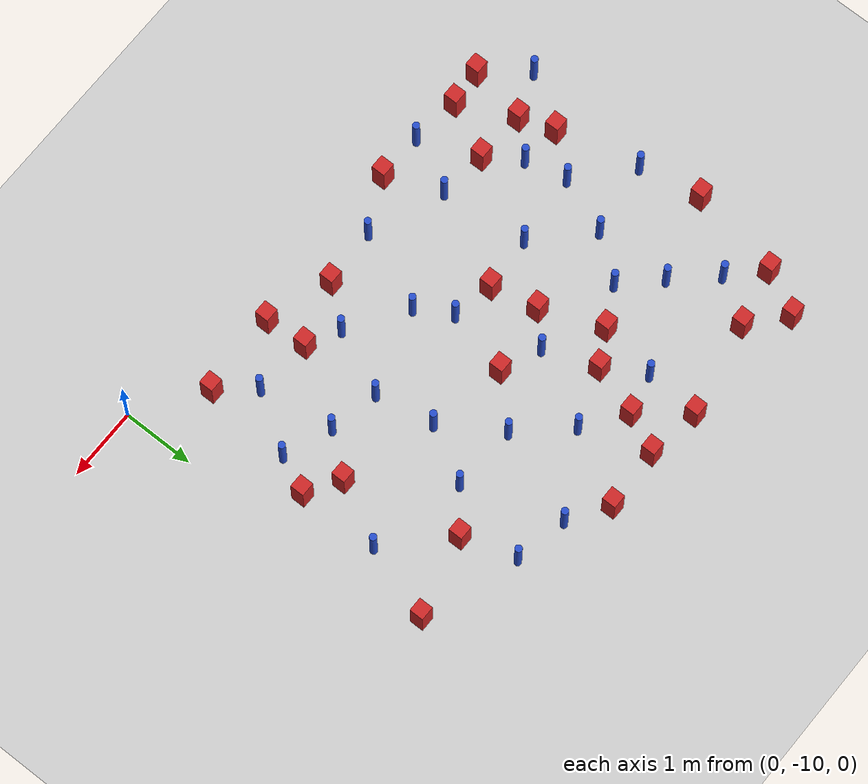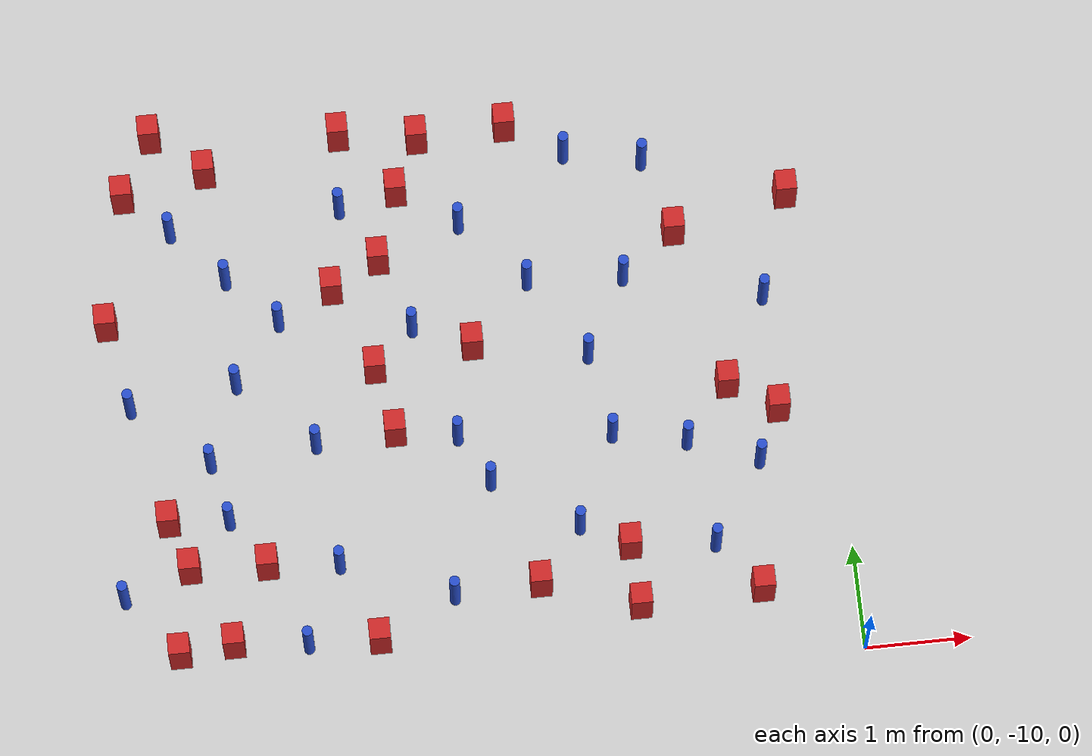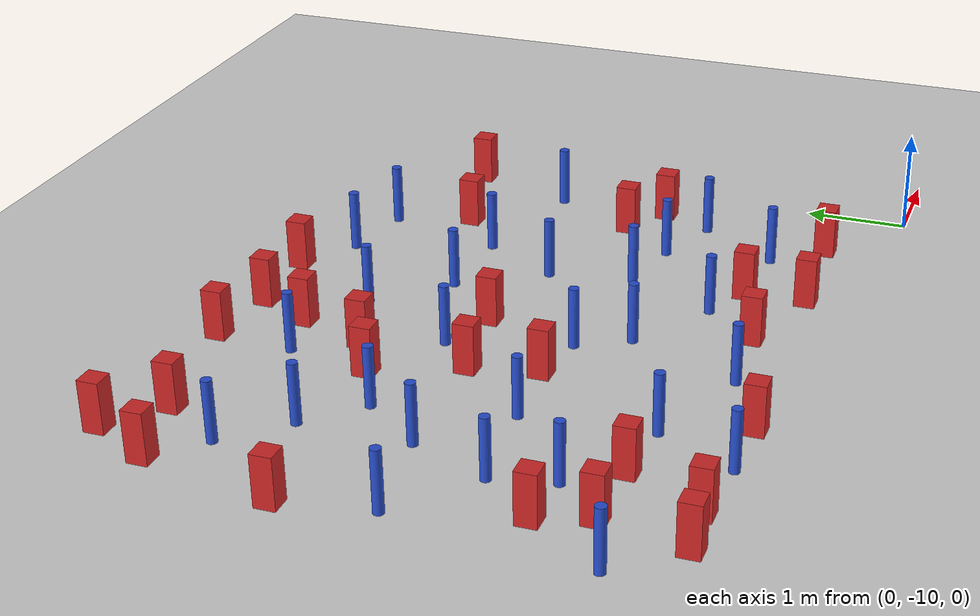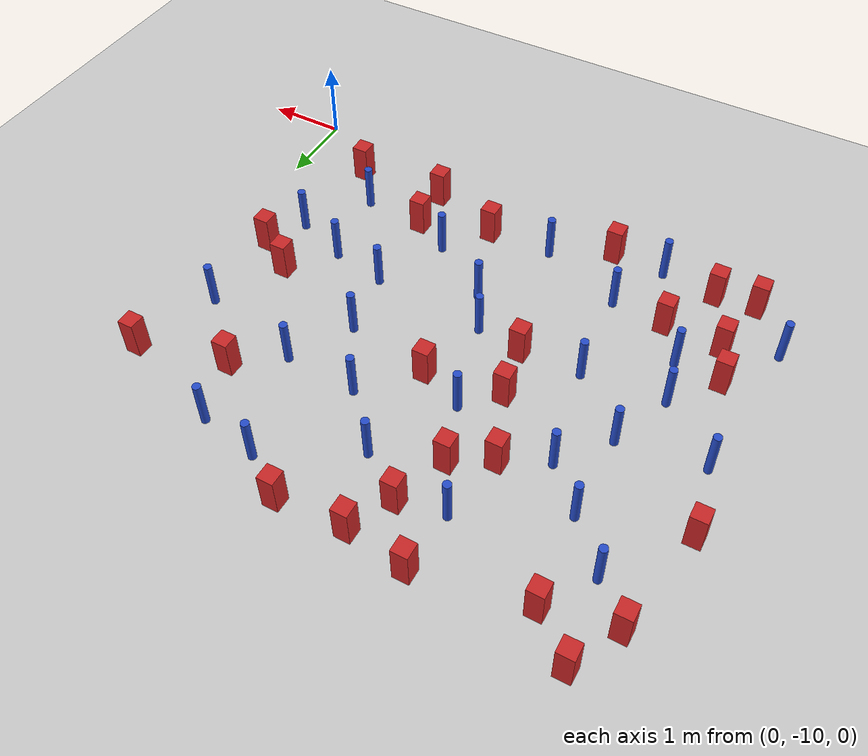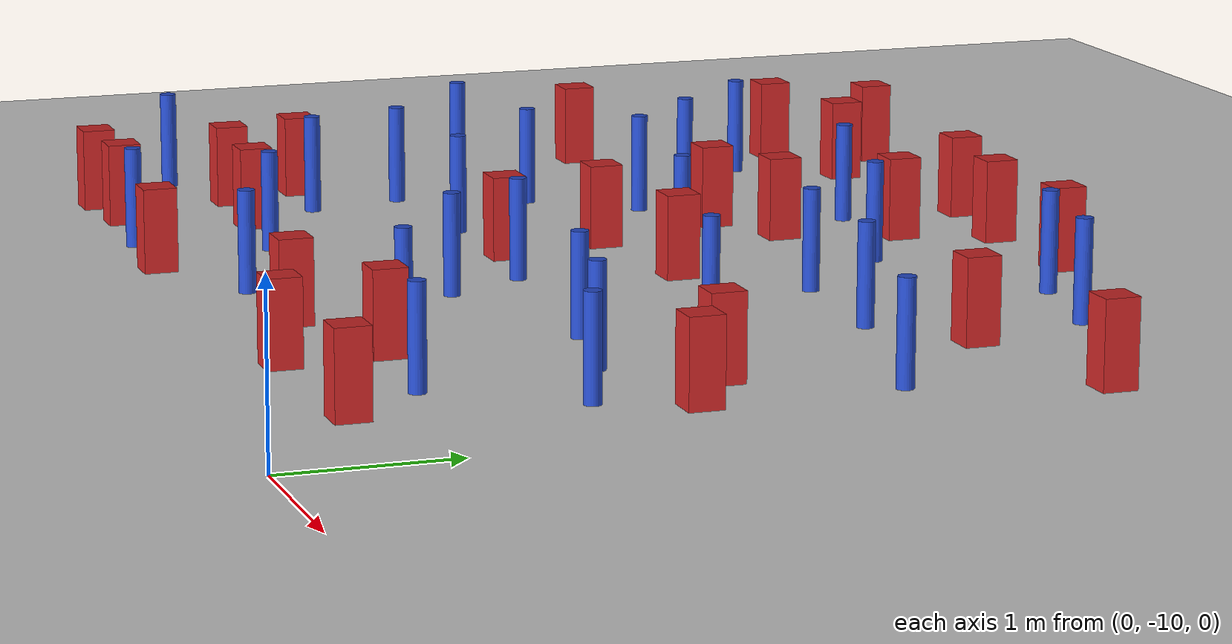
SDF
<sdf version="1.6">
 <world name="default">
  <model name="ground_plane">
   <static>1</static>
   <link name="link">
    <collision name="collision">
     <geometry><plane><normal>0 0 1</normal><size>100 100</size></plane></geometry>
     <surface><friction><ode><mu>100</mu><mu2>50</mu2></ode></friction></surface>
    </collision>
    <visual name="visual">
     <cast_shadows>0</cast_shadows>
     <geometry><plane><normal>0 0 1</normal><size>100 100</size></plane></geometry>
     <material>
      <ambient>1.0 1.0 1.0 1.0</ambient>
      <diffuse>0.8 0.8 0.8 1.0</diffuse>
      <specular>0.01 0.01 0.01 1.000000</specular>
     </material>
    </visual>
   </link>
  </model>
  <model name="pole_obstacle3">
   <static>true</static>
   <pose>-2.27383055472 -6.87822808617 7.38925637345e-09 -8.47170692798e-08 1.24976765033e-08 -1.74513093019e-07</pose>
   <link name="link">
    <pose>0 0 0.3 0 -0 0</pose>
    <inertial>
     <mass>1</mass>
     <inertia><ixx>0.145833</ixx><ixy>0</ixy><ixz>0</ixz><iyy>0.145833</iyy><iyz>0</iyz><izz>0.125</izz></inertia>
    </inertial>
    <collision name="collision">
     <geometry><cylinder><radius>0.05</radius><length>.6</length></cylinder></geometry>
    </collision>
    <visual name="visual">
     <geometry><cylinder><radius>0.05</radius><length>.6</length></cylinder></geometry>
     <material>
      <script><name>Gazebo/Blue</name><uri>file://media/materials/scripts/gazebo.material</uri></script>
     </material>
    </visual>
   </link>
  </model>
  <model name="square_post_obstacle8">
   <static>true</static>
   <pose>-5.75430322455 -4.65461936837 1.91545236811e-07 -7.35059704564e-06 1.12565212e-07 2.39332434364e-05</pose>
   <link name="link">
    <pose>0 0 0.25 0 -0 0</pose>
    <inertial>
     <mass>100</mass>
     <inertia>
      <ixx>0.166667</ixx>
      <ixy>0</ixy>
      <ixz>0</ixz>
      <iyy>0.166667</iyy>
      <iyz>0</iyz>
      <izz>0.166667</izz>
     </inertia>
    </inertial>
    <collision name="collision"><geometry><box><size>.2 .2 .5</size></box></geometry></collision>
    <visual name="visual">
     <geometry><box><size>.2 .2 .5</size></box></geometry>
     <material>
      <script><name>Gazebo/Red</name><uri>file://media/materials/scripts/gazebo.material</uri></script>
     </material>
    </visual>
   </link>
  </model>
  <model name="pole_obstacle7">
   <static>true</static>
   <pose>-0.77089150769 -8.09330029917 7.38925637345e-09 -8.47170692797e-08 1.249767648e-08 -1.74513093032e-07</pose>
   <link name="link">
    <pose>0 0 0.3 0 -0 0</pose>
    <inertial>
     <mass>1</mass>
     <inertia><ixx>0.145833</ixx><ixy>0</ixy><ixz>0</ixz><iyy>0.145833</iyy><iyz>0</iyz><izz>0.125</izz></inertia>
    </inertial>
    <collision name="collision">
     <geometry><cylinder><radius>0.05</radius><length>.6</length></cylinder></geometry>
    </collision>
    <visual name="visual">
     <geometry><cylinder><radius>0.05</radius><length>.6</length></cylinder></geometry>
     <material>
      <script><name>Gazebo/Blue</name><uri>file://media/materials/scripts/gazebo.material</uri></script>
     </material>
    </visual>
   </link>
  </model>
  <model name="square_post_obstacle14">
   <static>true</static>
   <pose>-4.17409091817 -5.71270492682 1.91545236811e-07 -7.35059704564e-06 1.12565212e-07 2.39332434364e-05</pose>
   <link name="link">
    <pose>0 0 0.25 0 -0 0</pose>
    <inertial>
     <mass>100</mass>
     <inertia>
      <ixx>0.166667</ixx>
      <ixy>0</ixy>
      <ixz>0</ixz>
      <iyy>0.166667</iyy>
      <iyz>0</iyz>
      <izz>0.166667</izz>
     </inertia>
    </inertial>
    <collision name="collision"><geometry><box><size>.2 .2 .5</size></box></geometry></collision>
    <visual name="visual">
     <geometry><box><size>.2 .2 .5</size></box></geometry>
     <material>
      <script><name>Gazebo/Red</name><uri>file://media/materials/scripts/gazebo.material</uri></script>
     </material>
    </visual>
   </link>
  </model>
  <model name="square_post_obstacle20">
   <static>true</static>
   <pose>-3.6914915848 -4.50716384659 1.91545236811e-07 -7.35059704564e-06 1.12565212e-07 2.39332434364e-05</pose>
   <link name="link">
    <pose>0 0 0.25 0 -0 0</pose>
    <inertial>
     <mass>100</mass>
     <inertia>
      <ixx>0.166667</ixx>
      <ixy>0</ixy>
      <ixz>0</ixz>
      <iyy>0.166667</iyy>
      <iyz>0</iyz>
      <izz>0.166667</izz>
     </inertia>
    </inertial>
    <collision name="collision"><geometry><box><size>.2 .2 .5</size></box></geometry></collision>
    <visual name="visual">
     <geometry><box><size>.2 .2 .5</size></box></geometry>
     <material>
      <script><name>Gazebo/Red</name><uri>file://media/materials/scripts/gazebo.material</uri></script>
     </material>
    </visual>
   </link>
  </model>
  <model name="square_post_obstacle26">
   <static>true</static>
   <pose>-0.22493551769 -5.42983822319 1.91545236811e-07 -7.35059704564e-06 1.12565212e-07 2.39332434364e-05</pose>
   <link name="link">
    <pose>0 0 0.25 0 -0 0</pose>
    <inertial>
     <mass>100</mass>
     <inertia>
      <ixx>0.166667</ixx>
      <ixy>0</ixy>
      <ixz>0</ixz>
      <iyy>0.166667</iyy>
      <iyz>0</iyz>
      <izz>0.166667</izz>
     </inertia>
    </inertial>
    <collision name="collision"><geometry><box><size>.2 .2 .5</size></box></geometry></collision>
    <visual name="visual">
     <geometry><box><size>.2 .2 .5</size></box></geometry>
     <material>
      <script><name>Gazebo/Red</name><uri>file://media/materials/scripts/gazebo.material</uri></script>
     </material>
    </visual>
   </link>
  </model>
  <model name="pole_obstacle18">
   <static>true</static>
   <pose>-6.84066763828 -8.8654462404 7.38925637345e-09 -8.471706928e-08 1.24976765081e-08 -1.74513093015e-07</pose>
   <link name="link">
    <pose>0 0 0.3 0 -0 0</pose>
    <inertial>
     <mass>1</mass>
     <inertia><ixx>0.145833</ixx><ixy>0</ixy><ixz>0</ixz><iyy>0.145833</iyy><iyz>0</iyz><izz>0.125</izz></inertia>
    </inertial>
    <collision name="collision">
     <geometry><cylinder><radius>0.05</radius><length>.6</length></cylinder></geometry>
    </collision>
    <visual name="visual">
     <geometry><cylinder><radius>0.05</radius><length>.6</length></cylinder></geometry>
     <material>
      <script><name>Gazebo/Blue</name><uri>file://media/materials/scripts/gazebo.material</uri></script>
     </material>
    </visual>
   </link>
  </model>
  <model name="pole_obstacle22">
   <static>true</static>
   <pose>-4.81011263715 -8.72837405567 7.38925637345e-09 -8.471706928e-08 1.24976765081e-08 -1.74513093015e-07</pose>
   <link name="link">
    <pose>0 0 0.3 0 -0 0</pose>
    <inertial>
     <mass>1</mass>
     <inertia><ixx>0.145833</ixx><ixy>0</ixy><ixz>0</ixz><iyy>0.145833</iyy><iyz>0</iyz><izz>0.125</izz></inertia>
    </inertial>
    <collision name="collision">
     <geometry><cylinder><radius>0.05</radius><length>.6</length></cylinder></geometry>
    </collision>
    <visual name="visual">
     <geometry><cylinder><radius>0.05</radius><length>.6</length></cylinder></geometry>
     <material>
      <script><name>Gazebo/Blue</name><uri>file://media/materials/scripts/gazebo.material</uri></script>
     </material>
    </visual>
   </link>
  </model>
  <model name="pole_obstacle27">
   <static>true</static>
   <pose>-2.52962763166 -8.57332152817 7.38925637345e-09 -8.47170692793e-08 1.24976764408e-08 -1.74513093041e-07</pose>
   <link name="link">
    <pose>0 0 0.3 0 -0 0</pose>
    <inertial>
     <mass>1</mass>
     <inertia><ixx>0.145833</ixx><ixy>0</ixy><ixz>0</ixz><iyy>0.145833</iyy><iyz>0</iyz><izz>0.125</izz></inertia>
    </inertial>
    <collision name="collision">
     <geometry><cylinder><radius>0.05</radius><length>.6</length></cylinder></geometry>
    </collision>
    <visual name="visual">
     <geometry><cylinder><radius>0.05</radius><length>.6</length></cylinder></geometry>
     <material>
      <script><name>Gazebo/Blue</name><uri>file://media/materials/scripts/gazebo.material</uri></script>
     </material>
    </visual>
   </link>
  </model>
  <model name="square_post_obstacle33">
   <static>true</static>
   <pose>-4.64373258278 -5.97226768983 1.91545236811e-07 -7.35059704564e-06 1.12565212e-07 2.39332434364e-05</pose>
   <link name="link">
    <pose>0 0 0.25 0 -0 0</pose>
    <inertial>
     <mass>100</mass>
     <inertia>
      <ixx>0.166667</ixx>
      <ixy>0</ixy>
      <ixz>0</ixz>
      <iyy>0.166667</iyy>
      <iyz>0</iyz>
      <izz>0.166667</izz>
     </inertia>
    </inertial>
    <collision name="collision"><geometry><box><size>.2 .2 .5</size></box></geometry></collision>
    <visual name="visual">
     <geometry><box><size>.2 .2 .5</size></box></geometry>
     <material>
      <script><name>Gazebo/Red</name><uri>file://media/materials/scripts/gazebo.material</uri></script>
     </material>
    </visual>
   </link>
  </model>
  <model name="pole_obstacle28">
   <static>true</static>
   <pose>-5.80458147735 -8.19432193247 7.38925637345e-09 -8.471706928e-08 1.24976765081e-08 -1.74513093015e-07</pose>
   <link name="link">
    <pose>0 0 0.3 0 -0 0</pose>
    <inertial>
     <mass>1</mass>
     <inertia><ixx>0.145833</ixx><ixy>0</ixy><ixz>0</ixz><iyy>0.145833</iyy><iyz>0</iyz><izz>0.125</izz></inertia>
    </inertial>
    <collision name="collision">
     <geometry><cylinder><radius>0.05</radius><length>.6</length></cylinder></geometry>
    </collision>
    <visual name="visual">
     <geometry><cylinder><radius>0.05</radius><length>.6</length></cylinder></geometry>
     <material>
      <script><name>Gazebo/Blue</name><uri>file://media/materials/scripts/gazebo.material</uri></script>
     </material>
    </visual>
   </link>
  </model>
  <model name="pole_obstacle31">
   <static>true</static>
   <pose>-1.4346927573 -7.8373261994 7.38925637345e-09 -8.47170692799e-08 1.24976765033e-08 -1.74513093018e-07</pose>
   <link name="link">
    <pose>0 0 0.3 0 -0 0</pose>
    <inertial>
     <mass>1</mass>
     <inertia><ixx>0.145833</ixx><ixy>0</ixy><ixz>0</ixz><iyy>0.145833</iyy><iyz>0</iyz><izz>0.125</izz></inertia>
    </inertial>
    <collision name="collision">
     <geometry><cylinder><radius>0.05</radius><length>.6</length></cylinder></geometry>
    </collision>
    <visual name="visual">
     <geometry><cylinder><radius>0.05</radius><length>.6</length></cylinder></geometry>
     <material>
      <script><name>Gazebo/Blue</name><uri>file://media/materials/scripts/gazebo.material</uri></script>
     </material>
    </visual>
   </link>
  </model>
  <model name="square_post_obstacle36">
   <static>true</static>
   <pose>-6.37585162031 -8.1430766115 1.91545236811e-07 -7.35059704564e-06 1.12565212e-07 2.39332434364e-05</pose>
   <link name="link">
    <pose>0 0 0.25 0 -0 0</pose>
    <inertial>
     <mass>100</mass>
     <inertia>
      <ixx>0.166667</ixx>
      <ixy>0</ixy>
      <ixz>0</ixz>
      <iyy>0.166667</iyy>
      <iyz>0</iyz>
      <izz>0.166667</izz>
     </inertia>
    </inertial>
    <collision name="collision"><geometry><box><size>.2 .2 .5</size></box></geometry></collision>
    <visual name="visual">
     <geometry><box><size>.2 .2 .5</size></box></geometry>
     <material>
      <script><name>Gazebo/Red</name><uri>file://media/materials/scripts/gazebo.material</uri></script>
     </material>
    </visual>
   </link>
  </model>
  <model name="square_post_obstacle39">
   <static>true</static>
   <pose>-2.84117472436 -4.46501018155 1.91545236811e-07 -7.35059704564e-06 1.12565212e-07 2.39332434364e-05</pose>
   <link name="link">
    <pose>0 0 0.25 0 -0 0</pose>
    <inertial>
     <mass>100</mass>
     <inertia>
      <ixx>0.166667</ixx>
      <ixy>0</ixy>
      <ixz>0</ixz>
      <iyy>0.166667</iyy>
      <iyz>0</iyz>
      <izz>0.166667</izz>
     </inertia>
    </inertial>
    <collision name="collision"><geometry><box><size>.2 .2 .5</size></box></geometry></collision>
    <visual name="visual">
     <geometry><box><size>.2 .2 .5</size></box></geometry>
     <material>
      <script><name>Gazebo/Red</name><uri>file://media/materials/scripts/gazebo.material</uri></script>
     </material>
    </visual>
   </link>
  </model>
  <model name="square_post_obstacle48">
   <static>true</static>
   <pose>-2.95599373303 -9.08975428804 1.91545236811e-07 -7.35059704564e-06 1.12565212e-07 2.39332434364e-05</pose>
   <link name="link">
    <pose>0 0 0.25 0 -0 0</pose>
    <inertial>
     <mass>100</mass>
     <inertia>
      <ixx>0.166667</ixx>
      <ixy>0</ixy>
      <ixz>0</ixz>
      <iyy>0.166667</iyy>
      <iyz>0</iyz>
      <izz>0.166667</izz>
     </inertia>
    </inertial>
    <collision name="collision"><geometry><box><size>.2 .2 .5</size></box></geometry></collision>
    <visual name="visual">
     <geometry><box><size>.2 .2 .5</size></box></geometry>
     <material>
      <script><name>Gazebo/Red</name><uri>file://media/materials/scripts/gazebo.material</uri></script>
     </material>
    </visual>
   </link>
  </model>
  <model name="pole_obstacle48">
   <static>true</static>
   <pose>-3.37375802952 -5.42960985773 7.38925637345e-09 -8.47170692798e-08 1.24976765033e-08 -1.74513093019e-07</pose>
   <link name="link">
    <pose>0 0 0.3 0 -0 0</pose>
    <inertial>
     <mass>1</mass>
     <inertia><ixx>0.145833</ixx><ixy>0</ixy><ixz>0</ixz><iyy>0.145833</iyy><iyz>0</iyz><izz>0.125</izz></inertia>
    </inertial>
    <collision name="collision">
     <geometry><cylinder><radius>0.05</radius><length>.6</length></cylinder></geometry>
    </collision>
    <visual name="visual">
     <geometry><cylinder><radius>0.05</radius><length>.6</length></cylinder></geometry>
     <material>
      <script><name>Gazebo/Blue</name><uri>file://media/materials/scripts/gazebo.material</uri></script>
     </material>
    </visual>
   </link>
  </model>
  <model name="square_post_obstacle49">
   <static>true</static>
   <pose>-4.44179697368 -4.39976877138 1.91545236811e-07 -7.35059704564e-06 1.12565212e-07 2.39332434364e-05</pose>
   <link name="link">
    <pose>0 0 0.25 0 -0 0</pose>
    <inertial>
     <mass>100</mass>
     <inertia>
      <ixx>0.166667</ixx>
      <ixy>0</ixy>
      <ixz>0</ixz>
      <iyy>0.166667</iyy>
      <iyz>0</iyz>
      <izz>0.166667</izz>
     </inertia>
    </inertial>
    <collision name="collision"><geometry><box><size>.2 .2 .5</size></box></geometry></collision>
    <visual name="visual">
     <geometry><box><size>.2 .2 .5</size></box></geometry>
     <material>
      <script><name>Gazebo/Red</name><uri>file://media/materials/scripts/gazebo.material</uri></script>
     </material>
    </visual>
   </link>
  </model>
  <model name="square_post_obstacle53">
   <static>true</static>
   <pose>-2.08302886187 -8.80590644414 1.91545236811e-07 -7.35059704564e-06 1.12565212e-07 2.39332434364e-05</pose>
   <link name="link">
    <pose>0 0 0.25 0 -0 0</pose>
    <inertial>
     <mass>100</mass>
     <inertia>
      <ixx>0.166667</ixx>
      <ixy>0</ixy>
      <ixz>0</ixz>
      <iyy>0.166667</iyy>
      <iyz>0</iyz>
      <izz>0.166667</izz>
     </inertia>
    </inertial>
    <collision name="collision"><geometry><box><size>.2 .2 .5</size></box></geometry></collision>
    <visual name="visual">
     <geometry><box><size>.2 .2 .5</size></box></geometry>
     <material>
      <script><name>Gazebo/Red</name><uri>file://media/materials/scripts/gazebo.material</uri></script>
     </material>
    </visual>
   </link>
  </model>
  <model name="square_post_obstacle54">
   <static>true</static>
   <pose>-5.86211831718 -9.39369747901 1.91545236811e-07 -7.35059704564e-06 1.12565212e-07 2.39332434364e-05</pose>
   <link name="link">
    <pose>0 0 0.25 0 -0 0</pose>
    <inertial>
     <mass>100</mass>
     <inertia>
      <ixx>0.166667</ixx>
      <ixy>0</ixy>
      <ixz>0</ixz>
      <iyy>0.166667</iyy>
      <iyz>0</iyz>
      <izz>0.166667</izz>
     </inertia>
    </inertial>
    <collision name="collision"><geometry><box><size>.2 .2 .5</size></box></geometry></collision>
    <visual name="visual">
     <geometry><box><size>.2 .2 .5</size></box></geometry>
     <material>
      <script><name>Gazebo/Red</name><uri>file://media/materials/scripts/gazebo.material</uri></script>
     </material>
    </visual>
   </link>
  </model>
  <model name="square_post_obstacle64">
   <static>true</static>
   <pose>-6.80957516549 -6.12275997141 1.91545236811e-07 -7.35059704564e-06 1.12565212e-07 2.39332434364e-05</pose>
   <link name="link">
    <pose>0 0 0.25 0 -0 0</pose>
    <inertial>
     <mass>100</mass>
     <inertia>
      <ixx>0.166667</ixx>
      <ixy>0</ixy>
      <ixz>0</ixz>
      <iyy>0.166667</iyy>
      <iyz>0</iyz>
      <izz>0.166667</izz>
     </inertia>
    </inertial>
    <collision name="collision"><geometry><box><size>.2 .2 .5</size></box></geometry></collision>
    <visual name="visual">
     <geometry><box><size>.2 .2 .5</size></box></geometry>
     <material>
      <script><name>Gazebo/Red</name><uri>file://media/materials/scripts/gazebo.material</uri></script>
     </material>
    </visual>
   </link>
  </model>
  <model name="square_post_obstacle70">
   <static>true</static>
   <pose>-0.545070507445 -7.59069855711 1.91545236811e-07 -7.35059704564e-06 1.12565212e-07 2.39332434364e-05</pose>
   <link name="link">
    <pose>0 0 0.25 0 -0 0</pose>
    <inertial>
     <mass>100</mass>
     <inertia>
      <ixx>0.166667</ixx>
      <ixy>0</ixy>
      <ixz>0</ixz>
      <iyy>0.166667</iyy>
      <iyz>0</iyz>
      <izz>0.166667</izz>
     </inertia>
    </inertial>
    <collision name="collision"><geometry><box><size>.2 .2 .5</size></box></geometry></collision>
    <visual name="visual">
     <geometry><box><size>.2 .2 .5</size></box></geometry>
     <material>
      <script><name>Gazebo/Red</name><uri>file://media/materials/scripts/gazebo.material</uri></script>
     </material>
    </visual>
   </link>
  </model>
  <model name="pole_obstacle68">
   <static>true</static>
   <pose>-4.49648310907 -5.15918075869 7.38925637345e-09 -8.47170692796e-08 1.24976764786e-08 -1.74513093032e-07</pose>
   <link name="link">
    <pose>0 0 0.3 0 -0 0</pose>
    <inertial>
     <mass>1</mass>
     <inertia><ixx>0.145833</ixx><ixy>0</ixy><ixz>0</ixz><iyy>0.145833</iyy><iyz>0</iyz><izz>0.125</izz></inertia>
    </inertial>
    <collision name="collision">
     <geometry><cylinder><radius>0.05</radius><length>.6</length></cylinder></geometry>
    </collision>
    <visual name="visual">
     <geometry><cylinder><radius>0.05</radius><length>.6</length></cylinder></geometry>
     <material>
      <script><name>Gazebo/Blue</name><uri>file://media/materials/scripts/gazebo.material</uri></script>
     </material>
    </visual>
   </link>
  </model>
  <model name="square_post_obstacle73">
   <static>true</static>
   <pose>-3.36348649995 -6.66922004553 1.91545236811e-07 -7.35059704564e-06 1.12565212e-07 2.39332434364e-05</pose>
   <link name="link">
    <pose>0 0 0.25 0 -0 0</pose>
    <inertial>
     <mass>100</mass>
     <inertia>
      <ixx>0.166667</ixx>
      <ixy>0</ixy>
      <ixz>0</ixz>
      <iyy>0.166667</iyy>
      <iyz>0</iyz>
      <izz>0.166667</izz>
     </inertia>
    </inertial>
    <collision name="collision"><geometry><box><size>.2 .2 .5</size></box></geometry></collision>
    <visual name="visual">
     <geometry><box><size>.2 .2 .5</size></box></geometry>
     <material>
      <script><name>Gazebo/Red</name><uri>file://media/materials/scripts/gazebo.material</uri></script>
     </material>
    </visual>
   </link>
  </model>
  <model name="pole_obstacle72">
   <static>true</static>
   <pose>-2.77766255109 -6.07495094368 7.38925637345e-09 -8.47170692798e-08 1.24976765033e-08 -1.74513093019e-07</pose>
   <link name="link">
    <pose>0 0 0.3 0 -0 0</pose>
    <inertial>
     <mass>1</mass>
     <inertia><ixx>0.145833</ixx><ixy>0</ixy><ixz>0</ixz><iyy>0.145833</iyy><iyz>0</iyz><izz>0.125</izz></inertia>
    </inertial>
    <collision name="collision">
     <geometry><cylinder><radius>0.05</radius><length>.6</length></cylinder></geometry>
    </collision>
    <visual name="visual">
     <geometry><cylinder><radius>0.05</radius><length>.6</length></cylinder></geometry>
     <material>
      <script><name>Gazebo/Blue</name><uri>file://media/materials/scripts/gazebo.material</uri></script>
     </material>
    </visual>
   </link>
  </model>
  <model name="pole_obstacle78">
   <static>true</static>
   <pose>-2.13101221334 -7.69496134936 7.38925637345e-09 -8.47170692798e-08 1.24976765033e-08 -1.74513093019e-07</pose>
   <link name="link">
    <pose>0 0 0.3 0 -0 0</pose>
    <inertial>
     <mass>1</mass>
     <inertia><ixx>0.145833</ixx><ixy>0</ixy><ixz>0</ixz><iyy>0.145833</iyy><iyz>0</iyz><izz>0.125</izz></inertia>
    </inertial>
    <collision name="collision">
     <geometry><cylinder><radius>0.05</radius><length>.6</length></cylinder></geometry>
    </collision>
    <visual name="visual">
     <geometry><cylinder><radius>0.05</radius><length>.6</length></cylinder></geometry>
     <material>
      <script><name>Gazebo/Blue</name><uri>file://media/materials/scripts/gazebo.material</uri></script>
     </material>
    </visual>
   </link>
  </model>
  <model name="pole_obstacle80">
   <static>true</static>
   <pose>-1.27833181355 -8.87329171969 7.38925637345e-09 -8.47170692798e-08 1.24976764881e-08 -1.74513093027e-07</pose>
   <link name="link">
    <pose>0 0 0.3 0 -0 0</pose>
    <inertial>
     <mass>1</mass>
     <inertia><ixx>0.145833</ixx><ixy>0</ixy><ixz>0</ixz><iyy>0.145833</iyy><iyz>0</iyz><izz>0.125</izz></inertia>
    </inertial>
    <collision name="collision">
     <geometry><cylinder><radius>0.05</radius><length>.6</length></cylinder></geometry>
    </collision>
    <visual name="visual">
     <geometry><cylinder><radius>0.05</radius><length>.6</length></cylinder></geometry>
     <material>
      <script><name>Gazebo/Blue</name><uri>file://media/materials/scripts/gazebo.material</uri></script>
     </material>
    </visual>
   </link>
  </model>
  <model name="pole_obstacle83">
   <static>true</static>
   <pose>-3.32034885317 -8.05339860376 7.38925637345e-09 -8.47170692793e-08 1.24976764408e-08 -1.74513093041e-07</pose>
   <link name="link">
    <pose>0 0 0.3 0 -0 0</pose>
    <inertial>
     <mass>1</mass>
     <inertia><ixx>0.145833</ixx><ixy>0</ixy><ixz>0</ixz><iyy>0.145833</iyy><iyz>0</iyz><izz>0.125</izz></inertia>
    </inertial>
    <collision name="collision">
     <geometry><cylinder><radius>0.05</radius><length>.6</length></cylinder></geometry>
    </collision>
    <visual name="visual">
     <geometry><cylinder><radius>0.05</radius><length>.6</length></cylinder></geometry>
     <material>
      <script><name>Gazebo/Blue</name><uri>file://media/materials/scripts/gazebo.material</uri></script>
     </material>
    </visual>
   </link>
  </model>
  <model name="pole_obstacle91">
   <static>true</static>
   <pose>-0.552663172152 -6.45410010633 7.38925637345e-09 -8.471706928e-08 1.24976765086e-08 -1.74513093015e-07</pose>
   <link name="link">
    <pose>0 0 0.3 0 -0 0</pose>
    <inertial>
     <mass>1</mass>
     <inertia><ixx>0.145833</ixx><ixy>0</ixy><ixz>0</ixz><iyy>0.145833</iyy><iyz>0</iyz><izz>0.125</izz></inertia>
    </inertial>
    <collision name="collision">
     <geometry><cylinder><radius>0.05</radius><length>.6</length></cylinder></geometry>
    </collision>
    <visual name="visual">
     <geometry><cylinder><radius>0.05</radius><length>.6</length></cylinder></geometry>
     <material>
      <script><name>Gazebo/Blue</name><uri>file://media/materials/scripts/gazebo.material</uri></script>
     </material>
    </visual>
   </link>
  </model>
  <model name="pole_obstacle92">
   <static>true</static>
   <pose>-3.58684702106 -7.57156794377 7.38925637345e-09 -8.47170692798e-08 1.24976765033e-08 -1.74513093019e-07</pose>
   <link name="link">
    <pose>0 0 0.3 0 -0 0</pose>
    <inertial>
     <mass>1</mass>
     <inertia><ixx>0.145833</ixx><ixy>0</ixy><ixz>0</ixz><iyy>0.145833</iyy><iyz>0</iyz><izz>0.125</izz></inertia>
    </inertial>
    <collision name="collision">
     <geometry><cylinder><radius>0.05</radius><length>.6</length></cylinder></geometry>
    </collision>
    <visual name="visual">
     <geometry><cylinder><radius>0.05</radius><length>.6</length></cylinder></geometry>
     <material>
      <script><name>Gazebo/Blue</name><uri>file://media/materials/scripts/gazebo.material</uri></script>
     </material>
    </visual>
   </link>
  </model>
  <model name="pole_obstacle94">
   <static>true</static>
   <pose>-6.13237820703 -5.2430871309 7.38925637345e-09 -8.47170692796e-08 1.24976764786e-08 -1.74513093032e-07</pose>
   <link name="link">
    <pose>0 0 0.3 0 -0 0</pose>
    <inertial>
     <mass>1</mass>
     <inertia><ixx>0.145833</ixx><ixy>0</ixy><ixz>0</ixz><iyy>0.145833</iyy><iyz>0</iyz><izz>0.125</izz></inertia>
    </inertial>
    <collision name="collision">
     <geometry><cylinder><radius>0.05</radius><length>.6</length></cylinder></geometry>
    </collision>
    <visual name="visual">
     <geometry><cylinder><radius>0.05</radius><length>.6</length></cylinder></geometry>
     <material>
      <script><name>Gazebo/Blue</name><uri>file://media/materials/scripts/gazebo.material</uri></script>
     </material>
    </visual>
   </link>
  </model>
  <model name="pole_obstacle102">
   <static>true</static>
   <pose>-5.17356636837 -6.25567338465 7.38925637345e-09 -8.47170692796e-08 1.24976764786e-08 -1.74513093032e-07</pose>
   <link name="link">
    <pose>0 0 0.3 0 -0 0</pose>
    <inertial>
     <mass>1</mass>
     <inertia><ixx>0.145833</ixx><ixy>0</ixy><ixz>0</ixz><iyy>0.145833</iyy><iyz>0</iyz><izz>0.125</izz></inertia>
    </inertial>
    <collision name="collision">
     <geometry><cylinder><radius>0.05</radius><length>.6</length></cylinder></geometry>
    </collision>
    <visual name="visual">
     <geometry><cylinder><radius>0.05</radius><length>.6</length></cylinder></geometry>
     <material>
      <script><name>Gazebo/Blue</name><uri>file://media/materials/scripts/gazebo.material</uri></script>
     </material>
    </visual>
   </link>
  </model>
  <model name="pole_obstacle104">
   <static>true</static>
   <pose>-5.6292964974 -6.84221675245 7.38925637345e-09 -8.47170692796e-08 1.24976764786e-08 -1.74513093032e-07</pose>
   <link name="link">
    <pose>0 0 0.3 0 -0 0</pose>
    <inertial>
     <mass>1</mass>
     <inertia><ixx>0.145833</ixx><ixy>0</ixy><ixz>0</ixz><iyy>0.145833</iyy><iyz>0</iyz><izz>0.125</izz></inertia>
    </inertial>
    <collision name="collision">
     <geometry><cylinder><radius>0.05</radius><length>.6</length></cylinder></geometry>
    </collision>
    <visual name="visual">
     <geometry><cylinder><radius>0.05</radius><length>.6</length></cylinder></geometry>
     <material>
      <script><name>Gazebo/Blue</name><uri>file://media/materials/scripts/gazebo.material</uri></script>
     </material>
    </visual>
   </link>
  </model>
  <model name="square_post_obstacle92">
   <static>true</static>
   <pose>-0.997213677307 -7.29943313742 1.91545236811e-07 -7.35059704564e-06 1.12565212e-07 2.39332434364e-05</pose>
   <link name="link">
    <pose>0 0 0.25 0 -0 0</pose>
    <inertial>
     <mass>100</mass>
     <inertia>
      <ixx>0.166667</ixx>
      <ixy>0</ixy>
      <ixz>0</ixz>
      <iyy>0.166667</iyy>
      <iyz>0</iyz>
      <izz>0.166667</izz>
     </inertia>
    </inertial>
    <collision name="collision"><geometry><box><size>.2 .2 .5</size></box></geometry></collision>
    <visual name="visual">
     <geometry><box><size>.2 .2 .5</size></box></geometry>
     <material>
      <script><name>Gazebo/Red</name><uri>file://media/materials/scripts/gazebo.material</uri></script>
     </material>
    </visual>
   </link>
  </model>
  <model name="square_post_obstacle95">
   <static>true</static>
   <pose>-4.30559655003 -6.81117980685 1.91545236811e-07 -7.35059704564e-06 1.12565212e-07 2.39332434364e-05</pose>
   <link name="link">
    <pose>0 0 0.25 0 -0 0</pose>
    <inertial>
     <mass>100</mass>
     <inertia>
      <ixx>0.166667</ixx>
      <ixy>0</ixy>
      <ixz>0</ixz>
      <iyy>0.166667</iyy>
      <iyz>0</iyz>
      <izz>0.166667</izz>
     </inertia>
    </inertial>
    <collision name="collision"><geometry><box><size>.2 .2 .5</size></box></geometry></collision>
    <visual name="visual">
     <geometry><box><size>.2 .2 .5</size></box></geometry>
     <material>
      <script><name>Gazebo/Red</name><uri>file://media/materials/scripts/gazebo.material</uri></script>
     </material>
    </visual>
   </link>
  </model>
  <model name="pole_obstacle112">
   <static>true</static>
   <pose>-2.29807329568 -4.80851787035 7.38925637345e-09 -8.47170692798e-08 1.24976765033e-08 -1.74513093019e-07</pose>
   <link name="link">
    <pose>0 0 0.3 0 -0 0</pose>
    <inertial>
     <mass>1</mass>
     <inertia><ixx>0.145833</ixx><ixy>0</ixy><ixz>0</ixz><iyy>0.145833</iyy><iyz>0</iyz><izz>0.125</izz></inertia>
    </inertial>
    <collision name="collision">
     <geometry><cylinder><radius>0.05</radius><length>.6</length></cylinder></geometry>
    </collision>
    <visual name="visual">
     <geometry><cylinder><radius>0.05</radius><length>.6</length></cylinder></geometry>
     <material>
      <script><name>Gazebo/Blue</name><uri>file://media/materials/scripts/gazebo.material</uri></script>
     </material>
    </visual>
   </link>
  </model>
  <model name="pole_obstacle131">
   <static>true</static>
   <pose>-6.64741399447 -6.98561947336 7.38925637345e-09 -8.47170692796e-08 1.24976764786e-08 -1.74513093032e-07</pose>
   <link name="link">
    <pose>0 0 0.3 0 -0 0</pose>
    <inertial>
     <mass>1</mass>
     <inertia><ixx>0.145833</ixx><ixy>0</ixy><ixz>0</ixz><iyy>0.145833</iyy><iyz>0</iyz><izz>0.125</izz></inertia>
    </inertial>
    <collision name="collision">
     <geometry><cylinder><radius>0.05</radius><length>.6</length></cylinder></geometry>
    </collision>
    <visual name="visual">
     <geometry><cylinder><radius>0.05</radius><length>.6</length></cylinder></geometry>
     <material>
      <script><name>Gazebo/Blue</name><uri>file://media/materials/scripts/gazebo.material</uri></script>
     </material>
    </visual>
   </link>
  </model>
  <model name="square_post_obstacle118">
   <static>true</static>
   <pose>-2.04843186681 -9.39759612874 1.91545236811e-07 -7.35059704564e-06 1.12565212e-07 2.39332434364e-05</pose>
   <link name="link">
    <pose>0 0 0.25 0 -0 0</pose>
    <inertial>
     <mass>100</mass>
     <inertia>
      <ixx>0.166667</ixx>
      <ixy>0</ixy>
      <ixz>0</ixz>
      <iyy>0.166667</iyy>
      <iyz>0</iyz>
      <izz>0.166667</izz>
     </inertia>
    </inertial>
    <collision name="collision"><geometry><box><size>.2 .2 .5</size></box></geometry></collision>
    <visual name="visual">
     <geometry><box><size>.2 .2 .5</size></box></geometry>
     <material>
      <script><name>Gazebo/Red</name><uri>file://media/materials/scripts/gazebo.material</uri></script>
     </material>
    </visual>
   </link>
  </model>
  <model name="pole_obstacle144">
   <static>true</static>
   <pose>-3.76591922132 -9.13786677527 7.38925637345e-09 -8.47170692793e-08 1.24976764408e-08 -1.74513093041e-07</pose>
   <link name="link">
    <pose>0 0 0.3 0 -0 0</pose>
    <inertial>
     <mass>1</mass>
     <inertia><ixx>0.145833</ixx><ixy>0</ixy><ixz>0</ixz><iyy>0.145833</iyy><iyz>0</iyz><izz>0.125</izz></inertia>
    </inertial>
    <collision name="collision">
     <geometry><cylinder><radius>0.05</radius><length>.6</length></cylinder></geometry>
    </collision>
    <visual name="visual">
     <geometry><cylinder><radius>0.05</radius><length>.6</length></cylinder></geometry>
     <material>
      <script><name>Gazebo/Blue</name><uri>file://media/materials/scripts/gazebo.material</uri></script>
     </material>
    </visual>
   </link>
  </model>
  <model name="square_post_obstacle142">
   <static>true</static>
   <pose>-3.94314727225 -5.03088432206 1.91545236811e-07 -7.35059704564e-06 1.12565212e-07 2.39332434364e-05</pose>
   <link name="link">
    <pose>0 0 0.25 0 -0 0</pose>
    <inertial>
     <mass>100</mass>
     <inertia>
      <ixx>0.166667</ixx>
      <ixy>0</ixy>
      <ixz>0</ixz>
      <iyy>0.166667</iyy>
      <iyz>0</iyz>
      <izz>0.166667</izz>
     </inertia>
    </inertial>
    <collision name="collision"><geometry><box><size>.2 .2 .5</size></box></geometry></collision>
    <visual name="visual">
     <geometry><box><size>.2 .2 .5</size></box></geometry>
     <material>
      <script><name>Gazebo/Red</name><uri>file://media/materials/scripts/gazebo.material</uri></script>
     </material>
    </visual>
   </link>
  </model>
  <model name="square_post_obstacle145">
   <static>true</static>
   <pose>-6.55651312319 -4.83333621205 1.91545236811e-07 -7.35059704564e-06 1.12565212e-07 2.39332434364e-05</pose>
   <link name="link">
    <pose>0 0 0.25 0 -0 0</pose>
    <inertial>
     <mass>100</mass>
     <inertia>
      <ixx>0.166667</ixx>
      <ixy>0</ixy>
      <ixz>0</ixz>
      <iyy>0.166667</iyy>
      <iyz>0</iyz>
      <izz>0.166667</izz>
     </inertia>
    </inertial>
    <collision name="collision"><geometry><box><size>.2 .2 .5</size></box></geometry></collision>
    <visual name="visual">
     <geometry><box><size>.2 .2 .5</size></box></geometry>
     <material>
      <script><name>Gazebo/Red</name><uri>file://media/materials/scripts/gazebo.material</uri></script>
     </material>
    </visual>
   </link>
  </model>
  <model name="square_post_obstacle147">
   <static>true</static>
   <pose>-4.50306029561 -9.48910170328 1.91545236811e-07 -7.35059704564e-06 1.12565212e-07 2.39332434364e-05</pose>
   <link name="link">
    <pose>0 0 0.25 0 -0 0</pose>
    <inertial>
     <mass>100</mass>
     <inertia>
      <ixx>0.166667</ixx>
      <ixy>0</ixy>
      <ixz>0</ixz>
      <iyy>0.166667</iyy>
      <iyz>0</iyz>
      <izz>0.166667</izz>
     </inertia>
    </inertial>
    <collision name="collision"><geometry><box><size>.2 .2 .5</size></box></geometry></collision>
    <visual name="visual">
     <geometry><box><size>.2 .2 .5</size></box></geometry>
     <material>
      <script><name>Gazebo/Red</name><uri>file://media/materials/scripts/gazebo.material</uri></script>
     </material>
    </visual>
   </link>
  </model>
  <model name="pole_obstacle157">
   <static>true</static>
   <pose>-4.92705903204 -7.51635269735 7.38925637345e-09 -8.47170692796e-08 1.24976764786e-08 -1.74513093032e-07</pose>
   <link name="link">
    <pose>0 0 0.3 0 -0 0</pose>
    <inertial>
     <mass>1</mass>
     <inertia><ixx>0.145833</ixx><ixy>0</ixy><ixz>0</ixz><iyy>0.145833</iyy><iyz>0</iyz><izz>0.125</izz></inertia>
    </inertial>
    <collision name="collision">
     <geometry><cylinder><radius>0.05</radius><length>.6</length></cylinder></geometry>
    </collision>
    <visual name="visual">
     <geometry><cylinder><radius>0.05</radius><length>.6</length></cylinder></geometry>
     <material>
      <script><name>Gazebo/Blue</name><uri>file://media/materials/scripts/gazebo.material</uri></script>
     </material>
    </visual>
   </link>
  </model>
  <model name="pole_obstacle167">
   <static>true</static>
   <pose>-5.93286715985 -7.60900471609 7.38925637345e-09 -8.47170692796e-08 1.24976764786e-08 -1.74513093032e-07</pose>
   <link name="link">
    <pose>0 0 0.3 0 -0 0</pose>
    <inertial>
     <mass>1</mass>
     <inertia><ixx>0.145833</ixx><ixy>0</ixy><ixz>0</ixz><iyy>0.145833</iyy><iyz>0</iyz><izz>0.125</izz></inertia>
    </inertial>
    <collision name="collision">
     <geometry><cylinder><radius>0.05</radius><length>.6</length></cylinder></geometry>
    </collision>
    <visual name="visual">
     <geometry><cylinder><radius>0.05</radius><length>.6</length></cylinder></geometry>
     <material>
      <script><name>Gazebo/Blue</name><uri>file://media/materials/scripts/gazebo.material</uri></script>
     </material>
    </visual>
   </link>
  </model>
  <model name="pole_obstacle177">
   <static>true</static>
   <pose>-1.86084251273 -6.12475149789 7.38925637345e-09 -8.47170692799e-08 1.24976765033e-08 -1.74513093018e-07</pose>
   <link name="link">
    <pose>0 0 0.3 0 -0 0</pose>
    <inertial>
     <mass>1</mass>
     <inertia><ixx>0.145833</ixx><ixy>0</ixy><ixz>0</ixz><iyy>0.145833</iyy><iyz>0</iyz><izz>0.125</izz></inertia>
    </inertial>
    <collision name="collision">
     <geometry><cylinder><radius>0.05</radius><length>.6</length></cylinder></geometry>
    </collision>
    <visual name="visual">
     <geometry><cylinder><radius>0.05</radius><length>.6</length></cylinder></geometry>
     <material>
      <script><name>Gazebo/Blue</name><uri>file://media/materials/scripts/gazebo.material</uri></script>
     </material>
    </visual>
   </link>
  </model>
  <model name="pole_obstacle179">
   <static>true</static>
   <pose>-1.55757621233 -4.9567652923 7.38925637345e-09 -8.47170692799e-08 1.24976765033e-08 -1.74513093018e-07</pose>
   <link name="link">
    <pose>0 0 0.3 0 -0 0</pose>
    <inertial>
     <mass>1</mass>
     <inertia><ixx>0.145833</ixx><ixy>0</ixy><ixz>0</ixz><iyy>0.145833</iyy><iyz>0</iyz><izz>0.125</izz></inertia>
    </inertial>
    <collision name="collision">
     <geometry><cylinder><radius>0.05</radius><length>.6</length></cylinder></geometry>
    </collision>
    <visual name="visual">
     <geometry><cylinder><radius>0.05</radius><length>.6</length></cylinder></geometry>
     <material>
      <script><name>Gazebo/Blue</name><uri>file://media/materials/scripts/gazebo.material</uri></script>
     </material>
    </visual>
   </link>
  </model>
  <model name="pole_obstacle186">
   <static>true</static>
   <pose>-5.16819380075 -9.47629693542 7.38925637345e-09 -8.471706928e-08 1.24976765081e-08 -1.74513093015e-07</pose>
   <link name="link">
    <pose>0 0 0.3 0 -0 0</pose>
    <inertial>
     <mass>1</mass>
     <inertia><ixx>0.145833</ixx><ixy>0</ixy><ixz>0</ixz><iyy>0.145833</iyy><iyz>0</iyz><izz>0.125</izz></inertia>
    </inertial>
    <collision name="collision">
     <geometry><cylinder><radius>0.05</radius><length>.6</length></cylinder></geometry>
    </collision>
    <visual name="visual">
     <geometry><cylinder><radius>0.05</radius><length>.6</length></cylinder></geometry>
     <material>
      <script><name>Gazebo/Blue</name><uri>file://media/materials/scripts/gazebo.material</uri></script>
     </material>
    </visual>
   </link>
  </model>
  <model name="square_post_obstacle177">
   <static>true</static>
   <pose>-4.17262872099 -7.4639207741 1.91545236811e-07 -7.35059704564e-06 1.12565212e-07 2.39332434364e-05</pose>
   <link name="link">
    <pose>0 0 0.25 0 -0 0</pose>
    <inertial>
     <mass>100</mass>
     <inertia>
      <ixx>0.166667</ixx>
      <ixy>0</ixy>
      <ixz>0</ixz>
      <iyy>0.166667</iyy>
      <iyz>0</iyz>
      <izz>0.166667</izz>
     </inertia>
    </inertial>
    <collision name="collision"><geometry><box><size>.2 .2 .5</size></box></geometry></collision>
    <visual name="visual">
     <geometry><box><size>.2 .2 .5</size></box></geometry>
     <material>
      <script><name>Gazebo/Red</name><uri>file://media/materials/scripts/gazebo.material</uri></script>
     </material>
    </visual>
   </link>
  </model>
  <model name="square_post_obstacle179">
   <static>true</static>
   <pose>-1.33384936534 -5.70122175432 1.91545236811e-07 -7.35059704564e-06 1.12565212e-07 2.39332434364e-05</pose>
   <link name="link">
    <pose>0 0 0.25 0 -0 0</pose>
    <inertial>
     <mass>100</mass>
     <inertia>
      <ixx>0.166667</ixx>
      <ixy>0</ixy>
      <ixz>0</ixz>
      <iyy>0.166667</iyy>
      <iyz>0</iyz>
      <izz>0.166667</izz>
     </inertia>
    </inertial>
    <collision name="collision"><geometry><box><size>.2 .2 .5</size></box></geometry></collision>
    <visual name="visual">
     <geometry><box><size>.2 .2 .5</size></box></geometry>
     <material>
      <script><name>Gazebo/Red</name><uri>file://media/materials/scripts/gazebo.material</uri></script>
     </material>
    </visual>
   </link>
  </model>
  <model name="square_post_obstacle189">
   <static>true</static>
   <pose>-5.48656246119 -8.65988398399 1.91545236811e-07 -7.35059704564e-06 1.12565212e-07 2.39332434364e-05</pose>
   <link name="link">
    <pose>0 0 0.25 0 -0 0</pose>
    <inertial>
     <mass>100</mass>
     <inertia>
      <ixx>0.166667</ixx>
      <ixy>0</ixy>
      <ixz>0</ixz>
      <iyy>0.166667</iyy>
      <iyz>0</iyz>
      <izz>0.166667</izz>
     </inertia>
    </inertial>
    <collision name="collision"><geometry><box><size>.2 .2 .5</size></box></geometry></collision>
    <visual name="visual">
     <geometry><box><size>.2 .2 .5</size></box></geometry>
     <material>
      <script><name>Gazebo/Red</name><uri>file://media/materials/scripts/gazebo.material</uri></script>
     </material>
    </visual>
   </link>
  </model>
  <model name="square_post_obstacle195">
   <static>true</static>
   <pose>-6.3691428949 -9.44198961806 1.91545236811e-07 -7.35059704564e-06 1.12565212e-07 2.39332434364e-05</pose>
   <link name="link">
    <pose>0 0 0.25 0 -0 0</pose>
    <inertial>
     <mass>100</mass>
     <inertia>
      <ixx>0.166667</ixx>
      <ixy>0</ixy>
      <ixz>0</ixz>
      <iyy>0.166667</iyy>
      <iyz>0</iyz>
      <izz>0.166667</izz>
     </inertia>
    </inertial>
    <collision name="collision"><geometry><box><size>.2 .2 .5</size></box></geometry></collision>
    <visual name="visual">
     <geometry><box><size>.2 .2 .5</size></box></geometry>
     <material>
      <script><name>Gazebo/Red</name><uri>file://media/materials/scripts/gazebo.material</uri></script>
     </material>
    </visual>
   </link>
  </model>
  <model name="square_post_obstacle200">
   <static>true</static>
   <pose>-6.2492212005 -4.23791867354 1.91545236811e-07 -7.35059704564e-06 1.12565212e-07 2.39332434364e-05</pose>
   <link name="link">
    <pose>0 0 0.25 0 -0 0</pose>
    <inertial>
     <mass>100</mass>
     <inertia>
      <ixx>0.166667</ixx>
      <ixy>0</ixy>
      <ixz>0</ixz>
      <iyy>0.166667</iyy>
      <iyz>0</iyz>
      <izz>0.166667</izz>
     </inertia>
    </inertial>
    <collision name="collision"><geometry><box><size>.2 .2 .5</size></box></geometry></collision>
    <visual name="visual">
     <geometry><box><size>.2 .2 .5</size></box></geometry>
     <material>
      <script><name>Gazebo/Red</name><uri>file://media/materials/scripts/gazebo.material</uri></script>
     </material>
    </visual>
   </link>
  </model>
  <model name="square_post_obstacle202">
   <static>true</static>
   <pose>-6.21276323299 -8.62763568937 1.91545236811e-07 -7.35059704564e-06 1.12565212e-07 2.39332434364e-05</pose>
   <link name="link">
    <pose>0 0 0.25 0 -0 0</pose>
    <inertial>
     <mass>100</mass>
     <inertia>
      <ixx>0.166667</ixx>
      <ixy>0</ixy>
      <ixz>0</ixz>
      <iyy>0.166667</iyy>
      <iyz>0</iyz>
      <izz>0.166667</izz>
     </inertia>
    </inertial>
    <collision name="collision"><geometry><box><size>.2 .2 .5</size></box></geometry></collision>
    <visual name="visual">
     <geometry><box><size>.2 .2 .5</size></box></geometry>
     <material>
      <script><name>Gazebo/Red</name><uri>file://media/materials/scripts/gazebo.material</uri></script>
     </material>
    </visual>
   </link>
  </model>
  <model name="pole_obstacle189">
   <static>true</static>
   <pose>-3.91374246646 -6.43941541213 7.38925637345e-09 -8.47170692794e-08 1.24976764468e-08 -1.7451309304e-07</pose>
   <link name="link">
    <pose>0 0 0.3 0 -0 0</pose>
    <inertial>
     <mass>1</mass>
     <inertia><ixx>0.145833</ixx><ixy>0</ixy><ixz>0</ixz><iyy>0.145833</iyy><iyz>0</iyz><izz>0.125</izz></inertia>
    </inertial>
    <collision name="collision">
     <geometry><cylinder><radius>0.05</radius><length>.6</length></cylinder></geometry>
    </collision>
    <visual name="visual">
     <geometry><cylinder><radius>0.05</radius><length>.6</length></cylinder></geometry>
     <material>
      <script><name>Gazebo/Blue</name><uri>file://media/materials/scripts/gazebo.material</uri></script>
     </material>
    </visual>
   </link>
  </model>
  <model name="pole_obstacle197">
   <static>true</static>
   <pose>-5.64225425908 -5.77794274997 7.38925637345e-09 -8.47170692796e-08 1.24976764786e-08 -1.74513093032e-07</pose>
   <link name="link">
    <pose>0 0 0.3 0 -0 0</pose>
    <inertial>
     <mass>1</mass>
     <inertia><ixx>0.145833</ixx><ixy>0</ixy><ixz>0</ixz><iyy>0.145833</iyy><iyz>0</iyz><izz>0.125</izz></inertia>
    </inertial>
    <collision name="collision">
     <geometry><cylinder><radius>0.05</radius><length>.6</length></cylinder></geometry>
    </collision>
    <visual name="visual">
     <geometry><cylinder><radius>0.05</radius><length>.6</length></cylinder></geometry>
     <material>
      <script><name>Gazebo/Blue</name><uri>file://media/materials/scripts/gazebo.material</uri></script>
     </material>
    </visual>
   </link>
  </model>
  <model name="square_post_obstacle204">
   <static>true</static>
   <pose>-0.892751767062 -9.35077774581 1.91545236811e-07 -7.35059704564e-06 1.12565212e-07 2.39332434364e-05</pose>
   <link name="link">
    <pose>0 0 0.25 0 -0 0</pose>
    <inertial>
     <mass>100</mass>
     <inertia>
      <ixx>0.166667</ixx>
      <ixy>0</ixy>
      <ixz>0</ixz>
      <iyy>0.166667</iyy>
      <iyz>0</iyz>
      <izz>0.166667</izz>
     </inertia>
    </inertial>
    <collision name="collision"><geometry><box><size>.2 .2 .5</size></box></geometry></collision>
    <visual name="visual">
     <geometry><box><size>.2 .2 .5</size></box></geometry>
     <material>
      <script><name>Gazebo/Red</name><uri>file://media/materials/scripts/gazebo.material</uri></script>
     </material>
    </visual>
   </link>
  </model>
 </world>
</sdf>
